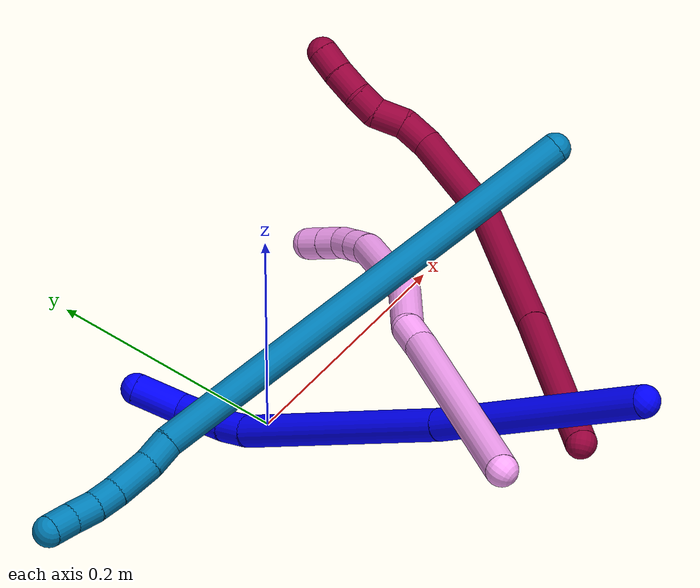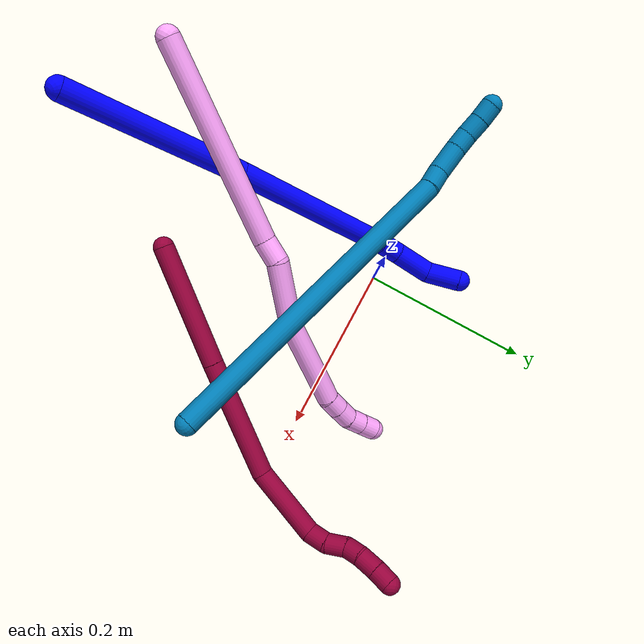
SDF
<sdf version="1.7">
 <world name="default">
  <model name="photoneo_s_sensor">
   <static>1</static>
   <pose>0 0 2 1.57079 1.57079 3.14159</pose>
   <link name="link">
    <inertial><mass>0.1</mass></inertial>
    <sensor name="sensor" type="depth">
     <update_rate>30</update_rate>
     <camera>
      <horizontal_fov>1.22</horizontal_fov>
      <image><width>1920</width><height>1200</height><format>B8G8R8</format></image>
      <clip><near>0.1</near><far>4</far></clip>
      <depth_camera><output>points</output></depth_camera>
     </camera>
     <plugin name="camera_plugin" filename="libgazebo_ros_depth_camera.so">
      <baseline>0.2</baseline>
      <alwaysOn>1</alwaysOn>
      <updateRate>0.0</updateRate>
      <cameraName>camera_ir</cameraName>
      <imageTopicName>/camera/color/image_raw</imageTopicName>
      <cameraInfoTopicName>/camera/color/camera_info</cameraInfoTopicName>
      <depthImageTopicName>/camera/depth/image_raw</depthImageTopicName>
      <depthImageCameraInfoTopicName>/camera/depth/camera_info</depthImageCameraInfoTopicName>
      <pointCloudTopicName>/camera/depth/points</pointCloudTopicName>
      <frameName>fr_optical</frameName>
      <pointCloudCutoff>0.1</pointCloudCutoff>
      <pointCloudCutoffMax>2.0</pointCloudCutoffMax>
      <distortionK1>0</distortionK1>
      <distortionK2>0</distortionK2>
      <distortionK3>0</distortionK3>
      <distortionT1>0</distortionT1>
      <distortionT2>0</distortionT2>
      <CxPrime>0</CxPrime>
      <Cx>0</Cx>
      <Cy>0</Cy>
      <focalLength>0</focalLength>
      <hackBaseline>0</hackBaseline>
     </plugin>
    </sensor>
   </link>
  </model>
  <model name="bin">
   <static>1</static>
   <link name="bottom">
    <collision name="collision-bottom">
     <pose>0 0 -0.01 0 -0 0</pose>
     <geometry><box><size>0.8 0.6 0.02</size></box></geometry>
     <surface>
      <friction><ode><mu>100</mu><mu2>100</mu2></ode></friction>
      <contact><collide_bitmask>65535</collide_bitmask></contact>
     </surface>
    </collision>
   </link>
   <link name="west_wall">
    <collision name="collision-west_wall">
     <pose>-0.41 0 0.1 0 -0 0</pose>
     <geometry><box><size>0.02 0.6 0.2</size></box></geometry>
     <surface>
      <friction><ode><mu>100</mu><mu2>100</mu2></ode></friction>
      <contact><collide_bitmask>65535</collide_bitmask></contact>
     </surface>
    </collision>
   </link>
   <link name="east_wall">
    <collision name="collision-east_wall">
     <pose>0.41 0 0.1 0 -0 0</pose>
     <geometry><box><size>0.02 0.6 0.2</size></box></geometry>
     <surface>
      <friction><ode><mu>100</mu><mu2>100</mu2></ode></friction>
      <contact><collide_bitmask>65535</collide_bitmask></contact>
     </surface>
    </collision>
   </link>
   <link name="south_wall">
    <collision name="collision-south_wall">
     <pose>0 -0.31 0.1 0 -0 0</pose>
     <geometry><box><size>0.8 0.02 0.2</size></box></geometry>
     <surface>
      <friction><ode><mu>100</mu><mu2>100</mu2></ode></friction>
      <contact><collide_bitmask>65535</collide_bitmask></contact>
     </surface>
    </collision>
   </link>
   <link name="north_wall">
    <collision name="collision-north_wall">
     <pose>0 0.31 0.1 0 -0 0</pose>
     <geometry><box><size>0.8 0.02 0.2</size></box></geometry>
     <surface>
      <friction><ode><mu>100</mu><mu2>100</mu2></ode></friction>
      <contact><collide_bitmask>65535</collide_bitmask></contact>
     </surface>
    </collision>
   </link>
  </model>
  <model name="1">
   <static>0</static>
   <link name="1">
    <collision name="collision-cylinder-e_1_1_4">
     <pose>0.007891 0.068695 -0.070158 -2.36673 0.080194 -0.196003</pose>
     <geometry><cylinder><radius>0.0125</radius><length>0.197012</length></cylinder></geometry>
     <surface>
      <friction><ode><mu>1.16</mu><mu2>1.16</mu2><slip1>0</slip1><slip2>0</slip2></ode></friction>
      <contact><ode><kp>1e+06</kp><kd>1</kd><max_vel>0</max_vel><min_depth>0.001</min_depth></ode></contact>
     </surface>
    </collision>
    <visual name="visual-cylinder-e_1_1_4">
     <pose>0.007891 0.068695 -0.070158 -2.36673 0.080194 -0.196003</pose>
     <geometry><cylinder><radius>0.0125</radius><length>0.197012</length></cylinder></geometry>
     <material><ambient>0 0 1 1</ambient></material>
    </visual>
    <collision name="collision-cylinder-e_2_4_5">
     <pose>0.022717 0.209499 -0.205709 -2.3074 0.071117 -0.160224</pose>
     <geometry><cylinder><radius>0.0125</radius><length>0.195182</length></cylinder></geometry>
     <surface>
      <friction><ode><mu>1.16</mu><mu2>1.16</mu2><slip1>0</slip1><slip2>0</slip2></ode></friction>
      <contact><ode><kp>1e+06</kp><kd>1</kd><max_vel>0</max_vel><min_depth>0.001</min_depth></ode></contact>
     </surface>
    </collision>
    <visual name="visual-cylinder-e_2_4_5">
     <pose>0.022717 0.209499 -0.205709 -2.3074 0.071117 -0.160224</pose>
     <geometry><cylinder><radius>0.0125</radius><length>0.195182</length></cylinder></geometry>
     <material><ambient>0 0 1 1</ambient></material>
    </visual>
    <collision name="collision-cylinder-e_3_5_6">
     <pose>0.029596 0.291521 -0.277165 -2.11966 -0.004747 0.008467</pose>
     <geometry><cylinder><radius>0.0125</radius><length>0.023241</length></cylinder></geometry>
     <surface>
      <friction><ode><mu>1.16</mu><mu2>1.16</mu2><slip1>0</slip1><slip2>0</slip2></ode></friction>
      <contact><ode><kp>1e+06</kp><kd>1</kd><max_vel>0</max_vel><min_depth>0.001</min_depth></ode></contact>
     </surface>
    </collision>
    <visual name="visual-cylinder-e_3_5_6">
     <pose>0.029596 0.291521 -0.277165 -2.11966 -0.004747 0.008467</pose>
     <geometry><cylinder><radius>0.0125</radius><length>0.023241</length></cylinder></geometry>
     <material><ambient>0 0 1 1</ambient></material>
    </visual>
    <collision name="collision-cylinder-e_4_6_7">
     <pose>0.02797 0.3215 -0.292742 -2.01355 -0.070645 0.11161</pose>
     <geometry><cylinder><radius>0.0125</radius><length>0.044524</length></cylinder></geometry>
     <surface>
      <friction><ode><mu>1.16</mu><mu2>1.16</mu2><slip1>0</slip1><slip2>0</slip2></ode></friction>
      <contact><ode><kp>1e+06</kp><kd>1</kd><max_vel>0</max_vel><min_depth>0.001</min_depth></ode></contact>
     </surface>
    </collision>
    <visual name="visual-cylinder-e_4_6_7">
     <pose>0.02797 0.3215 -0.292742 -2.01355 -0.070645 0.11161</pose>
     <geometry><cylinder><radius>0.0125</radius><length>0.044524</length></cylinder></geometry>
     <material><ambient>0 0 1 1</ambient></material>
    </visual>
    <collision name="collision-cylinder-e_5_7_2">
     <pose>0.016504 0.357515 -0.309222 -1.9826 -0.516934 0.767853</pose>
     <geometry><cylinder><radius>0.0125</radius><length>0.04004</length></cylinder></geometry>
     <surface>
      <friction><ode><mu>1.16</mu><mu2>1.16</mu2><slip1>0</slip1><slip2>0</slip2></ode></friction>
      <contact><ode><kp>1e+06</kp><kd>1</kd><max_vel>0</max_vel><min_depth>0.001</min_depth></ode></contact>
     </surface>
    </collision>
    <visual name="visual-cylinder-e_5_7_2">
     <pose>0.016504 0.357515 -0.309222 -1.9826 -0.516934 0.767853</pose>
     <geometry><cylinder><radius>0.0125</radius><length>0.04004</length></cylinder></geometry>
     <material><ambient>0 0 1 1</ambient></material>
    </visual>
    <collision name="collision-sphere-2">
     <pose>0.00661 0.373464 -0.316188 0 -0 0</pose>
     <geometry><sphere><radius>0.0125</radius></sphere></geometry>
     <surface>
      <friction><ode><mu>1.16</mu><mu2>1.16</mu2><slip1>0</slip1><slip2>0</slip2></ode></friction>
      <contact><ode><kp>1e+06</kp><kd>1</kd><max_vel>0</max_vel><min_depth>0.001</min_depth></ode></contact>
     </surface>
    </collision>
    <visual name="visual-sphere-2">
     <pose>0.00661 0.373464 -0.316188 0 -0 0</pose>
     <geometry><sphere><radius>0.0125</radius></sphere></geometry>
     <material><ambient>0 0 1 1</ambient></material>
    </visual>
    <collision name="collision-sphere-7">
     <pose>0.026398 0.341565 -0.302256 0 -0 0</pose>
     <geometry><sphere><radius>0.0125</radius></sphere></geometry>
     <surface>
      <friction><ode><mu>1.16</mu><mu2>1.16</mu2><slip1>0</slip1><slip2>0</slip2></ode></friction>
      <contact><ode><kp>1e+06</kp><kd>1</kd><max_vel>0</max_vel><min_depth>0.001</min_depth></ode></contact>
     </surface>
    </collision>
    <visual name="visual-sphere-7">
     <pose>0.026398 0.341565 -0.302256 0 -0 0</pose>
     <geometry><sphere><radius>0.0125</radius></sphere></geometry>
     <material><ambient>0 0 1 1</ambient></material>
    </visual>
    <collision name="collision-sphere-6">
     <pose>0.029541 0.301435 -0.283228 0 -0 0</pose>
     <geometry><sphere><radius>0.0125</radius></sphere></geometry>
     <surface>
      <friction><ode><mu>1.16</mu><mu2>1.16</mu2><slip1>0</slip1><slip2>0</slip2></ode></friction>
      <contact><ode><kp>1e+06</kp><kd>1</kd><max_vel>0</max_vel><min_depth>0.001</min_depth></ode></contact>
     </surface>
    </collision>
    <visual name="visual-sphere-6">
     <pose>0.029541 0.301435 -0.283228 0 -0 0</pose>
     <geometry><sphere><radius>0.0125</radius></sphere></geometry>
     <material><ambient>0 0 1 1</ambient></material>
    </visual>
    <collision name="collision-sphere-5">
     <pose>0.029651 0.281607 -0.271102 0 -0 0</pose>
     <geometry><sphere><radius>0.0125</radius></sphere></geometry>
     <surface>
      <friction><ode><mu>1.16</mu><mu2>1.16</mu2><slip1>0</slip1><slip2>0</slip2></ode></friction>
      <contact><ode><kp>1e+06</kp><kd>1</kd><max_vel>0</max_vel><min_depth>0.001</min_depth></ode></contact>
     </surface>
    </collision>
    <visual name="visual-sphere-5">
     <pose>0.029651 0.281607 -0.271102 0 -0 0</pose>
     <geometry><sphere><radius>0.0125</radius></sphere></geometry>
     <material><ambient>0 0 1 1</ambient></material>
    </visual>
    <collision name="collision-sphere-1">
     <geometry><sphere><radius>0.0125</radius></sphere></geometry>
     <surface>
      <friction><ode><mu>1.16</mu><mu2>1.16</mu2><slip1>0</slip1><slip2>0</slip2></ode></friction>
      <contact><ode><kp>1e+06</kp><kd>1</kd><max_vel>0</max_vel><min_depth>0.001</min_depth></ode></contact>
     </surface>
    </collision>
    <visual name="visual-sphere-1">
     <geometry><sphere><radius>0.0125</radius></sphere></geometry>
     <material><ambient>0 0 1 1</ambient></material>
    </visual>
    <collision name="collision-sphere-4">
     <pose>0.015782 0.137391 -0.140316 0 -0 0</pose>
     <geometry><sphere><radius>0.0125</radius></sphere></geometry>
     <surface>
      <friction><ode><mu>1.16</mu><mu2>1.16</mu2><slip1>0</slip1><slip2>0</slip2></ode></friction>
      <contact><ode><kp>1e+06</kp><kd>1</kd><max_vel>0</max_vel><min_depth>0.001</min_depth></ode></contact>
     </surface>
    </collision>
    <visual name="visual-sphere-4">
     <pose>0.015782 0.137391 -0.140316 0 -0 0</pose>
     <geometry><sphere><radius>0.0125</radius></sphere></geometry>
     <material><ambient>0 0 1 1</ambient></material>
    </visual>
    <inertial>
     <pose>0.017165 0.179658 -0.17166 0 -0 0</pose>
     <mass>0.5</mass>
     <inertia>
      <ixx>0.001044</ixx>
      <ixy>0</ixy>
      <ixz>0</ixz>
      <iyy>-0.001051</iyy>
      <iyz>0</iyz>
      <izz>-0.001045</izz>
     </inertia>
    </inertial>
   </link>
   <pose>0.011148 -0.338486 0.239513 -0.01331 0.822768 -0.431208</pose>
  </model>
  <model name="4">
   <static>0</static>
   <link name="4">
    <collision name="collision-cylinder-e_1_1_4">
     <pose>0.030384 0.073191 -0.074154 -2.36273 0.283754 -0.669872</pose>
     <geometry><cylinder><radius>0.0125</radius><length>0.217062</length></cylinder></geometry>
     <surface>
      <friction><ode><mu>1.16</mu><mu2>1.16</mu2><slip1>0</slip1><slip2>0</slip2></ode></friction>
      <contact><ode><kp>1e+06</kp><kd>1</kd><max_vel>0</max_vel><min_depth>0.001</min_depth></ode></contact>
     </surface>
    </collision>
    <visual name="visual-cylinder-e_1_1_4">
     <pose>0.030384 0.073191 -0.074154 -2.36273 0.283754 -0.669872</pose>
     <geometry><cylinder><radius>0.0125</radius><length>0.217062</length></cylinder></geometry>
     <material><ambient>1 0.65098 0.996078 1</ambient></material>
    </visual>
    <collision name="collision-cylinder-e_2_4_5">
     <pose>0.063017 0.153676 -0.158927 -2.53976 0.172778 -0.544283</pose>
     <geometry><cylinder><radius>0.0125</radius><length>0.026154</length></cylinder></geometry>
     <surface>
      <friction><ode><mu>1.16</mu><mu2>1.16</mu2><slip1>0</slip1><slip2>0</slip2></ode></friction>
      <contact><ode><kp>1e+06</kp><kd>1</kd><max_vel>0</max_vel><min_depth>0.001</min_depth></ode></contact>
     </surface>
    </collision>
    <visual name="visual-cylinder-e_2_4_5">
     <pose>0.063017 0.153676 -0.158927 -2.53976 0.172778 -0.544283</pose>
     <geometry><cylinder><radius>0.0125</radius><length>0.026154</length></cylinder></geometry>
     <material><ambient>1 0.65098 0.996078 1</ambient></material>
    </visual>
    <collision name="collision-cylinder-e_3_5_6">
     <pose>0.073191 0.19035 -0.187761 -2.12577 0.225368 -0.401143</pose>
     <geometry><cylinder><radius>0.0125</radius><length>0.070932</length></cylinder></geometry>
     <surface>
      <friction><ode><mu>1.16</mu><mu2>1.16</mu2><slip1>0</slip1><slip2>0</slip2></ode></friction>
      <contact><ode><kp>1e+06</kp><kd>1</kd><max_vel>0</max_vel><min_depth>0.001</min_depth></ode></contact>
     </surface>
    </collision>
    <visual name="visual-cylinder-e_3_5_6">
     <pose>0.073191 0.19035 -0.187761 -2.12577 0.225368 -0.401143</pose>
     <geometry><cylinder><radius>0.0125</radius><length>0.070932</length></cylinder></geometry>
     <material><ambient>1 0.65098 0.996078 1</ambient></material>
    </visual>
    <collision name="collision-cylinder-e_4_6_7">
     <pose>0.100746 0.255095 -0.239765 -2.33343 0.381658 -0.848636</pose>
     <geometry><cylinder><radius>0.0125</radius><length>0.105407</length></cylinder></geometry>
     <surface>
      <friction><ode><mu>1.16</mu><mu2>1.16</mu2><slip1>0</slip1><slip2>0</slip2></ode></friction>
      <contact><ode><kp>1e+06</kp><kd>1</kd><max_vel>0</max_vel><min_depth>0.001</min_depth></ode></contact>
     </surface>
    </collision>
    <visual name="visual-cylinder-e_4_6_7">
     <pose>0.100746 0.255095 -0.239765 -2.33343 0.381658 -0.848636</pose>
     <geometry><cylinder><radius>0.0125</radius><length>0.105407</length></cylinder></geometry>
     <material><ambient>1 0.65098 0.996078 1</ambient></material>
    </visual>
    <collision name="collision-cylinder-e_5_7_8">
     <pose>0.125925 0.295183 -0.280532 -2.54644 0.582325 -1.54769</pose>
     <geometry><cylinder><radius>0.0125</radius><length>0.020178</length></cylinder></geometry>
     <surface>
      <friction><ode><mu>1.16</mu><mu2>1.16</mu2><slip1>0</slip1><slip2>0</slip2></ode></friction>
      <contact><ode><kp>1e+06</kp><kd>1</kd><max_vel>0</max_vel><min_depth>0.001</min_depth></ode></contact>
     </surface>
    </collision>
    <visual name="visual-cylinder-e_5_7_8">
     <pose>0.125925 0.295183 -0.280532 -2.54644 0.582325 -1.54769</pose>
     <geometry><cylinder><radius>0.0125</radius><length>0.020178</length></cylinder></geometry>
     <material><ambient>1 0.65098 0.996078 1</ambient></material>
    </visual>
    <collision name="collision-cylinder-e_6_8_9">
     <pose>0.137171 0.304467 -0.294526 -2.56529 0.597769 -1.60954</pose>
     <geometry><cylinder><radius>0.0125</radius><length>0.020249</length></cylinder></geometry>
     <surface>
      <friction><ode><mu>1.16</mu><mu2>1.16</mu2><slip1>0</slip1><slip2>0</slip2></ode></friction>
      <contact><ode><kp>1e+06</kp><kd>1</kd><max_vel>0</max_vel><min_depth>0.001</min_depth></ode></contact>
     </surface>
    </collision>
    <visual name="visual-cylinder-e_6_8_9">
     <pose>0.137171 0.304467 -0.294526 -2.56529 0.597769 -1.60954</pose>
     <geometry><cylinder><radius>0.0125</radius><length>0.020249</length></cylinder></geometry>
     <material><ambient>1 0.65098 0.996078 1</ambient></material>
    </visual>
    <collision name="collision-cylinder-e_7_9_10">
     <pose>0.149505 0.31101 -0.308762 -2.87359 0.725277 -2.45881</pose>
     <geometry><cylinder><radius>0.0125</radius><length>0.020008</length></cylinder></geometry>
     <surface>
      <friction><ode><mu>1.16</mu><mu2>1.16</mu2><slip1>0</slip1><slip2>0</slip2></ode></friction>
      <contact><ode><kp>1e+06</kp><kd>1</kd><max_vel>0</max_vel><min_depth>0.001</min_depth></ode></contact>
     </surface>
    </collision>
    <visual name="visual-cylinder-e_7_9_10">
     <pose>0.149505 0.31101 -0.308762 -2.87359 0.725277 -2.45881</pose>
     <geometry><cylinder><radius>0.0125</radius><length>0.020008</length></cylinder></geometry>
     <material><ambient>1 0.65098 0.996078 1</ambient></material>
    </visual>
    <collision name="collision-cylinder-e_8_10_2">
     <pose>0.162759 0.314811 -0.323262 -2.89674 0.722702 -2.51213</pose>
     <geometry><cylinder><radius>0.0125</radius><length>0.02001</length></cylinder></geometry>
     <surface>
      <friction><ode><mu>1.16</mu><mu2>1.16</mu2><slip1>0</slip1><slip2>0</slip2></ode></friction>
      <contact><ode><kp>1e+06</kp><kd>1</kd><max_vel>0</max_vel><min_depth>0.001</min_depth></ode></contact>
     </surface>
    </collision>
    <visual name="visual-cylinder-e_8_10_2">
     <pose>0.162759 0.314811 -0.323262 -2.89674 0.722702 -2.51213</pose>
     <geometry><cylinder><radius>0.0125</radius><length>0.02001</length></cylinder></geometry>
     <material><ambient>1 0.65098 0.996078 1</ambient></material>
    </visual>
    <collision name="collision-sphere-2">
     <pose>0.169377 0.31663 -0.330542 0 -0 0</pose>
     <geometry><sphere><radius>0.0125</radius></sphere></geometry>
     <surface>
      <friction><ode><mu>1.16</mu><mu2>1.16</mu2><slip1>0</slip1><slip2>0</slip2></ode></friction>
      <contact><ode><kp>1e+06</kp><kd>1</kd><max_vel>0</max_vel><min_depth>0.001</min_depth></ode></contact>
     </surface>
    </collision>
    <visual name="visual-sphere-2">
     <pose>0.169377 0.31663 -0.330542 0 -0 0</pose>
     <geometry><sphere><radius>0.0125</radius></sphere></geometry>
     <material><ambient>1 0.65098 0.996078 1</ambient></material>
    </visual>
    <collision name="collision-sphere-10">
     <pose>0.156142 0.312992 -0.315981 0 -0 0</pose>
     <geometry><sphere><radius>0.0125</radius></sphere></geometry>
     <surface>
      <friction><ode><mu>1.16</mu><mu2>1.16</mu2><slip1>0</slip1><slip2>0</slip2></ode></friction>
      <contact><ode><kp>1e+06</kp><kd>1</kd><max_vel>0</max_vel><min_depth>0.001</min_depth></ode></contact>
     </surface>
    </collision>
    <visual name="visual-sphere-10">
     <pose>0.156142 0.312992 -0.315981 0 -0 0</pose>
     <geometry><sphere><radius>0.0125</radius></sphere></geometry>
     <material><ambient>1 0.65098 0.996078 1</ambient></material>
    </visual>
    <collision name="collision-sphere-9">
     <pose>0.142869 0.309027 -0.301543 0 -0 0</pose>
     <geometry><sphere><radius>0.0125</radius></sphere></geometry>
     <surface>
      <friction><ode><mu>1.16</mu><mu2>1.16</mu2><slip1>0</slip1><slip2>0</slip2></ode></friction>
      <contact><ode><kp>1e+06</kp><kd>1</kd><max_vel>0</max_vel><min_depth>0.001</min_depth></ode></contact>
     </surface>
    </collision>
    <visual name="visual-sphere-9">
     <pose>0.142869 0.309027 -0.301543 0 -0 0</pose>
     <geometry><sphere><radius>0.0125</radius></sphere></geometry>
     <material><ambient>1 0.65098 0.996078 1</ambient></material>
    </visual>
    <collision name="collision-sphere-4">
     <pose>0.060769 0.146382 -0.148308 0 -0 0</pose>
     <geometry><sphere><radius>0.0125</radius></sphere></geometry>
     <surface>
      <friction><ode><mu>1.16</mu><mu2>1.16</mu2><slip1>0</slip1><slip2>0</slip2></ode></friction>
      <contact><ode><kp>1e+06</kp><kd>1</kd><max_vel>0</max_vel><min_depth>0.001</min_depth></ode></contact>
     </surface>
    </collision>
    <visual name="visual-sphere-4">
     <pose>0.060769 0.146382 -0.148308 0 -0 0</pose>
     <geometry><sphere><radius>0.0125</radius></sphere></geometry>
     <material><ambient>1 0.65098 0.996078 1</ambient></material>
    </visual>
    <collision name="collision-sphere-1">
     <geometry><sphere><radius>0.0125</radius></sphere></geometry>
     <surface>
      <friction><ode><mu>1.16</mu><mu2>1.16</mu2><slip1>0</slip1><slip2>0</slip2></ode></friction>
      <contact><ode><kp>1e+06</kp><kd>1</kd><max_vel>0</max_vel><min_depth>0.001</min_depth></ode></contact>
     </surface>
    </collision>
    <visual name="visual-sphere-1">
     <geometry><sphere><radius>0.0125</radius></sphere></geometry>
     <material><ambient>1 0.65098 0.996078 1</ambient></material>
    </visual>
    <collision name="collision-sphere-8">
     <pose>0.131473 0.299907 -0.287509 0 -0 0</pose>
     <geometry><sphere><radius>0.0125</radius></sphere></geometry>
     <surface>
      <friction><ode><mu>1.16</mu><mu2>1.16</mu2><slip1>0</slip1><slip2>0</slip2></ode></friction>
      <contact><ode><kp>1e+06</kp><kd>1</kd><max_vel>0</max_vel><min_depth>0.001</min_depth></ode></contact>
     </surface>
    </collision>
    <visual name="visual-sphere-8">
     <pose>0.131473 0.299907 -0.287509 0 -0 0</pose>
     <geometry><sphere><radius>0.0125</radius></sphere></geometry>
     <material><ambient>1 0.65098 0.996078 1</ambient></material>
    </visual>
    <collision name="collision-sphere-5">
     <pose>0.065265 0.160969 -0.169546 0 -0 0</pose>
     <geometry><sphere><radius>0.0125</radius></sphere></geometry>
     <surface>
      <friction><ode><mu>1.16</mu><mu2>1.16</mu2><slip1>0</slip1><slip2>0</slip2></ode></friction>
      <contact><ode><kp>1e+06</kp><kd>1</kd><max_vel>0</max_vel><min_depth>0.001</min_depth></ode></contact>
     </surface>
    </collision>
    <visual name="visual-sphere-5">
     <pose>0.065265 0.160969 -0.169546 0 -0 0</pose>
     <geometry><sphere><radius>0.0125</radius></sphere></geometry>
     <material><ambient>1 0.65098 0.996078 1</ambient></material>
    </visual>
    <collision name="collision-sphere-6">
     <pose>0.081116 0.219731 -0.205976 0 -0 0</pose>
     <geometry><sphere><radius>0.0125</radius></sphere></geometry>
     <surface>
      <friction><ode><mu>1.16</mu><mu2>1.16</mu2><slip1>0</slip1><slip2>0</slip2></ode></friction>
      <contact><ode><kp>1e+06</kp><kd>1</kd><max_vel>0</max_vel><min_depth>0.001</min_depth></ode></contact>
     </surface>
    </collision>
    <visual name="visual-sphere-6">
     <pose>0.081116 0.219731 -0.205976 0 -0 0</pose>
     <geometry><sphere><radius>0.0125</radius></sphere></geometry>
     <material><ambient>1 0.65098 0.996078 1</ambient></material>
    </visual>
    <collision name="collision-sphere-7">
     <pose>0.120376 0.290459 -0.273555 0 -0 0</pose>
     <geometry><sphere><radius>0.0125</radius></sphere></geometry>
     <surface>
      <friction><ode><mu>1.16</mu><mu2>1.16</mu2><slip1>0</slip1><slip2>0</slip2></ode></friction>
      <contact><ode><kp>1e+06</kp><kd>1</kd><max_vel>0</max_vel><min_depth>0.001</min_depth></ode></contact>
     </surface>
    </collision>
    <visual name="visual-sphere-7">
     <pose>0.120376 0.290459 -0.273555 0 -0 0</pose>
     <geometry><sphere><radius>0.0125</radius></sphere></geometry>
     <material><ambient>1 0.65098 0.996078 1</ambient></material>
    </visual>
    <inertial>
     <pose>0.071242 0.169881 -0.166229 0 -0 0</pose>
     <mass>0.5</mass>
     <inertia>
      <ixx>0.000152</ixx>
      <ixy>0</ixy>
      <ixz>0</ixz>
      <iyy>-0.000989</iyy>
      <iyz>0</iyz>
      <izz>-0.000995</izz>
     </inertia>
    </inertial>
   </link>
   <pose>-0.085486 -0.282682 0.213132 -2.0783 1.16881 2.63927</pose>
  </model>
  <model name="8">
   <static>0</static>
   <link name="8">
    <collision name="collision-cylinder-e_1_1_4">
     <pose>0.003896 0.05123 0.052887 -0.769485 0.052857 -0.021407</pose>
     <geometry><cylinder><radius>0.0125</radius><length>0.147467</length></cylinder></geometry>
     <surface>
      <friction><ode><mu>1.16</mu><mu2>1.16</mu2><slip1>0</slip1><slip2>0</slip2></ode></friction>
      <contact><ode><kp>1e+06</kp><kd>1</kd><max_vel>0</max_vel><min_depth>0.001</min_depth></ode></contact>
     </surface>
    </collision>
    <visual name="visual-cylinder-e_1_1_4">
     <pose>0.003896 0.05123 0.052887 -0.769485 0.052857 -0.021407</pose>
     <geometry><cylinder><radius>0.0125</radius><length>0.147467</length></cylinder></geometry>
     <material><ambient>0.584314 0 0.227451 1</ambient></material>
    </visual>
    <collision name="collision-cylinder-e_2_4_5">
     <pose>0.010825 0.154002 0.15715 -0.787012 0.041669 -0.017301</pose>
     <geometry><cylinder><radius>0.0125</radius><length>0.145676</length></cylinder></geometry>
     <surface>
      <friction><ode><mu>1.16</mu><mu2>1.16</mu2><slip1>0</slip1><slip2>0</slip2></ode></friction>
      <contact><ode><kp>1e+06</kp><kd>1</kd><max_vel>0</max_vel><min_depth>0.001</min_depth></ode></contact>
     </surface>
    </collision>
    <visual name="visual-cylinder-e_2_4_5">
     <pose>0.010825 0.154002 0.15715 -0.787012 0.041669 -0.017301</pose>
     <geometry><cylinder><radius>0.0125</radius><length>0.145676</length></cylinder></geometry>
     <material><ambient>0.584314 0 0.227451 1</ambient></material>
    </visual>
    <collision name="collision-cylinder-e_3_5_6">
     <pose>0.00161 0.237771 0.238043 -0.829271 -0.273279 0.120891</pose>
     <geometry><cylinder><radius>0.0125</radius><length>0.090771</length></cylinder></geometry>
     <surface>
      <friction><ode><mu>1.16</mu><mu2>1.16</mu2><slip1>0</slip1><slip2>0</slip2></ode></friction>
      <contact><ode><kp>1e+06</kp><kd>1</kd><max_vel>0</max_vel><min_depth>0.001</min_depth></ode></contact>
     </surface>
    </collision>
    <visual name="visual-cylinder-e_3_5_6">
     <pose>0.00161 0.237771 0.238043 -0.829271 -0.273279 0.120891</pose>
     <geometry><cylinder><radius>0.0125</radius><length>0.090771</length></cylinder></geometry>
     <material><ambient>0.584314 0 0.227451 1</ambient></material>
    </visual>
    <collision name="collision-cylinder-e_4_6_7">
     <pose>-0.019303 0.275822 0.274078 -0.72914 -0.780936 0.311613</pose>
     <geometry><cylinder><radius>0.0125</radius><length>0.024616</length></cylinder></geometry>
     <surface>
      <friction><ode><mu>1.16</mu><mu2>1.16</mu2><slip1>0</slip1><slip2>0</slip2></ode></friction>
      <contact><ode><kp>1e+06</kp><kd>1</kd><max_vel>0</max_vel><min_depth>0.001</min_depth></ode></contact>
     </surface>
    </collision>
    <visual name="visual-cylinder-e_4_6_7">
     <pose>-0.019303 0.275822 0.274078 -0.72914 -0.780936 0.311613</pose>
     <geometry><cylinder><radius>0.0125</radius><length>0.024616</length></cylinder></geometry>
     <material><ambient>0.584314 0 0.227451 1</ambient></material>
    </visual>
    <collision name="collision-cylinder-e_5_7_8">
     <pose>-0.03837 0.288469 0.282836 -1.25383 -0.966661 0.726646</pose>
     <geometry><cylinder><radius>0.0125</radius><length>0.025282</length></cylinder></geometry>
     <surface>
      <friction><ode><mu>1.16</mu><mu2>1.16</mu2><slip1>0</slip1><slip2>0</slip2></ode></friction>
      <contact><ode><kp>1e+06</kp><kd>1</kd><max_vel>0</max_vel><min_depth>0.001</min_depth></ode></contact>
     </surface>
    </collision>
    <visual name="visual-cylinder-e_5_7_8">
     <pose>-0.03837 0.288469 0.282836 -1.25383 -0.966661 0.726646</pose>
     <geometry><cylinder><radius>0.0125</radius><length>0.025282</length></cylinder></geometry>
     <material><ambient>0.584314 0 0.227451 1</ambient></material>
    </visual>
    <collision name="collision-cylinder-e_6_8_9">
     <pose>-0.056616 0.29881 0.29067 -0.561055 -0.870421 0.266338</pose>
     <geometry><cylinder><radius>0.0125</radius><length>0.020512</length></cylinder></geometry>
     <surface>
      <friction><ode><mu>1.16</mu><mu2>1.16</mu2><slip1>0</slip1><slip2>0</slip2></ode></friction>
      <contact><ode><kp>1e+06</kp><kd>1</kd><max_vel>0</max_vel><min_depth>0.001</min_depth></ode></contact>
     </surface>
    </collision>
    <visual name="visual-cylinder-e_6_8_9">
     <pose>-0.056616 0.29881 0.29067 -0.561055 -0.870421 0.266338</pose>
     <geometry><cylinder><radius>0.0125</radius><length>0.020512</length></cylinder></geometry>
     <material><ambient>0.584314 0 0.227451 1</ambient></material>
    </visual>
    <collision name="collision-cylinder-e_7_9_10">
     <pose>-0.071685 0.307991 0.303852 -0.641493 -0.65205 0.223701</pose>
     <geometry><cylinder><radius>0.0125</radius><length>0.023821</length></cylinder></geometry>
     <surface>
      <friction><ode><mu>1.16</mu><mu2>1.16</mu2><slip1>0</slip1><slip2>0</slip2></ode></friction>
      <contact><ode><kp>1e+06</kp><kd>1</kd><max_vel>0</max_vel><min_depth>0.001</min_depth></ode></contact>
     </surface>
    </collision>
    <visual name="visual-cylinder-e_7_9_10">
     <pose>-0.071685 0.307991 0.303852 -0.641493 -0.65205 0.223701</pose>
     <geometry><cylinder><radius>0.0125</radius><length>0.023821</length></cylinder></geometry>
     <material><ambient>0.584314 0 0.227451 1</ambient></material>
    </visual>
    <collision name="collision-cylinder-e_8_10_2">
     <pose>-0.084809 0.318836 0.31904 -0.598094 -0.57005 0.180172</pose>
     <geometry><cylinder><radius>0.0125</radius><length>0.021855</length></cylinder></geometry>
     <surface>
      <friction><ode><mu>1.16</mu><mu2>1.16</mu2><slip1>0</slip1><slip2>0</slip2></ode></friction>
      <contact><ode><kp>1e+06</kp><kd>1</kd><max_vel>0</max_vel><min_depth>0.001</min_depth></ode></contact>
     </surface>
    </collision>
    <visual name="visual-cylinder-e_8_10_2">
     <pose>-0.084809 0.318836 0.31904 -0.598094 -0.57005 0.180172</pose>
     <geometry><cylinder><radius>0.0125</radius><length>0.021855</length></cylinder></geometry>
     <material><ambient>0.584314 0 0.227451 1</ambient></material>
    </visual>
    <collision name="collision-sphere-2">
     <pose>-0.090707 0.324016 0.326642 0 -0 0</pose>
     <geometry><sphere><radius>0.0125</radius></sphere></geometry>
     <surface>
      <friction><ode><mu>1.16</mu><mu2>1.16</mu2><slip1>0</slip1><slip2>0</slip2></ode></friction>
      <contact><ode><kp>1e+06</kp><kd>1</kd><max_vel>0</max_vel><min_depth>0.001</min_depth></ode></contact>
     </surface>
    </collision>
    <visual name="visual-sphere-2">
     <pose>-0.090707 0.324016 0.326642 0 -0 0</pose>
     <geometry><sphere><radius>0.0125</radius></sphere></geometry>
     <material><ambient>0.584314 0 0.227451 1</ambient></material>
    </visual>
    <collision name="collision-sphere-10">
     <pose>-0.078912 0.313656 0.311437 0 -0 0</pose>
     <geometry><sphere><radius>0.0125</radius></sphere></geometry>
     <surface>
      <friction><ode><mu>1.16</mu><mu2>1.16</mu2><slip1>0</slip1><slip2>0</slip2></ode></friction>
      <contact><ode><kp>1e+06</kp><kd>1</kd><max_vel>0</max_vel><min_depth>0.001</min_depth></ode></contact>
     </surface>
    </collision>
    <visual name="visual-sphere-10">
     <pose>-0.078912 0.313656 0.311437 0 -0 0</pose>
     <geometry><sphere><radius>0.0125</radius></sphere></geometry>
     <material><ambient>0.584314 0 0.227451 1</ambient></material>
    </visual>
    <collision name="collision-sphere-9">
     <pose>-0.064457 0.302327 0.296267 0 -0 0</pose>
     <geometry><sphere><radius>0.0125</radius></sphere></geometry>
     <surface>
      <friction><ode><mu>1.16</mu><mu2>1.16</mu2><slip1>0</slip1><slip2>0</slip2></ode></friction>
      <contact><ode><kp>1e+06</kp><kd>1</kd><max_vel>0</max_vel><min_depth>0.001</min_depth></ode></contact>
     </surface>
    </collision>
    <visual name="visual-sphere-9">
     <pose>-0.064457 0.302327 0.296267 0 -0 0</pose>
     <geometry><sphere><radius>0.0125</radius></sphere></geometry>
     <material><ambient>0.584314 0 0.227451 1</ambient></material>
    </visual>
    <collision name="collision-sphere-4">
     <pose>0.007791 0.102459 0.105773 0 -0 0</pose>
     <geometry><sphere><radius>0.0125</radius></sphere></geometry>
     <surface>
      <friction><ode><mu>1.16</mu><mu2>1.16</mu2><slip1>0</slip1><slip2>0</slip2></ode></friction>
      <contact><ode><kp>1e+06</kp><kd>1</kd><max_vel>0</max_vel><min_depth>0.001</min_depth></ode></contact>
     </surface>
    </collision>
    <visual name="visual-sphere-4">
     <pose>0.007791 0.102459 0.105773 0 -0 0</pose>
     <geometry><sphere><radius>0.0125</radius></sphere></geometry>
     <material><ambient>0.584314 0 0.227451 1</ambient></material>
    </visual>
    <collision name="collision-sphere-1">
     <geometry><sphere><radius>0.0125</radius></sphere></geometry>
     <surface>
      <friction><ode><mu>1.16</mu><mu2>1.16</mu2><slip1>0</slip1><slip2>0</slip2></ode></friction>
      <contact><ode><kp>1e+06</kp><kd>1</kd><max_vel>0</max_vel><min_depth>0.001</min_depth></ode></contact>
     </surface>
    </collision>
    <visual name="visual-sphere-1">
     <geometry><sphere><radius>0.0125</radius></sphere></geometry>
     <material><ambient>0.584314 0 0.227451 1</ambient></material>
    </visual>
    <collision name="collision-sphere-8">
     <pose>-0.048774 0.295292 0.285074 0 -0 0</pose>
     <geometry><sphere><radius>0.0125</radius></sphere></geometry>
     <surface>
      <friction><ode><mu>1.16</mu><mu2>1.16</mu2><slip1>0</slip1><slip2>0</slip2></ode></friction>
      <contact><ode><kp>1e+06</kp><kd>1</kd><max_vel>0</max_vel><min_depth>0.001</min_depth></ode></contact>
     </surface>
    </collision>
    <visual name="visual-sphere-8">
     <pose>-0.048774 0.295292 0.285074 0 -0 0</pose>
     <geometry><sphere><radius>0.0125</radius></sphere></geometry>
     <material><ambient>0.584314 0 0.227451 1</ambient></material>
    </visual>
    <collision name="collision-sphere-5">
     <pose>0.013859 0.205544 0.208526 0 -0 0</pose>
     <geometry><sphere><radius>0.0125</radius></sphere></geometry>
     <surface>
      <friction><ode><mu>1.16</mu><mu2>1.16</mu2><slip1>0</slip1><slip2>0</slip2></ode></friction>
      <contact><ode><kp>1e+06</kp><kd>1</kd><max_vel>0</max_vel><min_depth>0.001</min_depth></ode></contact>
     </surface>
    </collision>
    <visual name="visual-sphere-5">
     <pose>0.013859 0.205544 0.208526 0 -0 0</pose>
     <geometry><sphere><radius>0.0125</radius></sphere></geometry>
     <material><ambient>0.584314 0 0.227451 1</ambient></material>
    </visual>
    <collision name="collision-sphere-6">
     <pose>-0.010639 0.269998 0.267559 0 -0 0</pose>
     <geometry><sphere><radius>0.0125</radius></sphere></geometry>
     <surface>
      <friction><ode><mu>1.16</mu><mu2>1.16</mu2><slip1>0</slip1><slip2>0</slip2></ode></friction>
      <contact><ode><kp>1e+06</kp><kd>1</kd><max_vel>0</max_vel><min_depth>0.001</min_depth></ode></contact>
     </surface>
    </collision>
    <visual name="visual-sphere-6">
     <pose>-0.010639 0.269998 0.267559 0 -0 0</pose>
     <geometry><sphere><radius>0.0125</radius></sphere></geometry>
     <material><ambient>0.584314 0 0.227451 1</ambient></material>
    </visual>
    <collision name="collision-sphere-7">
     <pose>-0.027967 0.281647 0.280597 0 -0 0</pose>
     <geometry><sphere><radius>0.0125</radius></sphere></geometry>
     <surface>
      <friction><ode><mu>1.16</mu><mu2>1.16</mu2><slip1>0</slip1><slip2>0</slip2></ode></friction>
      <contact><ode><kp>1e+06</kp><kd>1</kd><max_vel>0</max_vel><min_depth>0.001</min_depth></ode></contact>
     </surface>
    </collision>
    <visual name="visual-sphere-7">
     <pose>-0.027967 0.281647 0.280597 0 -0 0</pose>
     <geometry><sphere><radius>0.0125</radius></sphere></geometry>
     <material><ambient>0.584314 0 0.227451 1</ambient></material>
    </visual>
    <inertial>
     <pose>-0.00774 0.172177 0.172739 0 -0 0</pose>
     <mass>0.5</mass>
     <inertia>
      <ixx>0.000597</ixx>
      <ixy>0</ixy>
      <ixz>0</ixz>
      <iyy>0.000461</iyy>
      <iyz>0</iyz>
      <izz>-0.000403</izz>
     </inertia>
    </inertial>
   </link>
   <pose>0.09024 -0.231109 0.053982 -0.93363 0.614143 -0.726379</pose>
  </model>
  <model name="9">
   <static>0</static>
   <link name="9">
    <collision name="collision-cylinder-e_1_1_4">
     <pose>-0.13595 0.118257 -0.055924 -2.01253 -0.80465 1.18331</pose>
     <geometry><cylinder><radius>0.0125</radius><length>0.377331</length></cylinder></geometry>
     <surface>
      <friction><ode><mu>1.16</mu><mu2>1.16</mu2><slip1>0</slip1><slip2>0</slip2></ode></friction>
      <contact><ode><kp>1e+06</kp><kd>1</kd><max_vel>0</max_vel><min_depth>0.001</min_depth></ode></contact>
     </surface>
    </collision>
    <visual name="visual-cylinder-e_1_1_4">
     <pose>-0.13595 0.118257 -0.055924 -2.01253 -0.80465 1.18331</pose>
     <geometry><cylinder><radius>0.0125</radius><length>0.377331</length></cylinder></geometry>
     <material><ambient>0 0.490196 0.709804 1</ambient></material>
    </visual>
    <collision name="collision-cylinder-e_2_4_5">
     <pose>-0.281714 0.241794 -0.11458 -2.0483 -1.02621 1.49394</pose>
     <geometry><cylinder><radius>0.0125</radius><length>0.022948</length></cylinder></geometry>
     <surface>
      <friction><ode><mu>1.16</mu><mu2>1.16</mu2><slip1>0</slip1><slip2>0</slip2></ode></friction>
      <contact><ode><kp>1e+06</kp><kd>1</kd><max_vel>0</max_vel><min_depth>0.001</min_depth></ode></contact>
     </surface>
    </collision>
    <visual name="visual-cylinder-e_2_4_5">
     <pose>-0.281714 0.241794 -0.11458 -2.0483 -1.02621 1.49394</pose>
     <geometry><cylinder><radius>0.0125</radius><length>0.022948</length></cylinder></geometry>
     <material><ambient>0 0.490196 0.709804 1</ambient></material>
    </visual>
    <collision name="collision-cylinder-e_3_5_6">
     <pose>-0.3056 0.25741 -0.119387 -1.76893 -0.927786 1.09656</pose>
     <geometry><cylinder><radius>0.0125</radius><length>0.035166</length></cylinder></geometry>
     <surface>
      <friction><ode><mu>1.16</mu><mu2>1.16</mu2><slip1>0</slip1><slip2>0</slip2></ode></friction>
      <contact><ode><kp>1e+06</kp><kd>1</kd><max_vel>0</max_vel><min_depth>0.001</min_depth></ode></contact>
     </surface>
    </collision>
    <visual name="visual-cylinder-e_3_5_6">
     <pose>-0.3056 0.25741 -0.119387 -1.76893 -0.927786 1.09656</pose>
     <geometry><cylinder><radius>0.0125</radius><length>0.035166</length></cylinder></geometry>
     <material><ambient>0 0.490196 0.709804 1</ambient></material>
    </visual>
    <collision name="collision-cylinder-e_4_6_7">
     <pose>-0.3276 0.274421 -0.122072 -1.66195 -0.869037 0.940783</pose>
     <geometry><cylinder><radius>0.0125</radius><length>0.020764</length></cylinder></geometry>
     <surface>
      <friction><ode><mu>1.16</mu><mu2>1.16</mu2><slip1>0</slip1><slip2>0</slip2></ode></friction>
      <contact><ode><kp>1e+06</kp><kd>1</kd><max_vel>0</max_vel><min_depth>0.001</min_depth></ode></contact>
     </surface>
    </collision>
    <visual name="visual-cylinder-e_4_6_7">
     <pose>-0.3276 0.274421 -0.122072 -1.66195 -0.869037 0.940783</pose>
     <geometry><cylinder><radius>0.0125</radius><length>0.020764</length></cylinder></geometry>
     <material><ambient>0 0.490196 0.709804 1</ambient></material>
    </visual>
    <collision name="collision-cylinder-e_5_7_8">
     <pose>-0.343352 0.289212 -0.122255 -1.5182 -0.766267 0.730466</pose>
     <geometry><cylinder><radius>0.0125</radius><length>0.022564</length></cylinder></geometry>
     <surface>
      <friction><ode><mu>1.16</mu><mu2>1.16</mu2><slip1>0</slip1><slip2>0</slip2></ode></friction>
      <contact><ode><kp>1e+06</kp><kd>1</kd><max_vel>0</max_vel><min_depth>0.001</min_depth></ode></contact>
     </surface>
    </collision>
    <visual name="visual-cylinder-e_5_7_8">
     <pose>-0.343352 0.289212 -0.122255 -1.5182 -0.766267 0.730466</pose>
     <geometry><cylinder><radius>0.0125</radius><length>0.022564</length></cylinder></geometry>
     <material><ambient>0 0.490196 0.709804 1</ambient></material>
    </visual>
    <collision name="collision-cylinder-e_6_8_2">
     <pose>-0.358864 0.304559 -0.120699 -1.41601 -0.810157 0.703608</pose>
     <geometry><cylinder><radius>0.0125</radius><length>0.021227</length></cylinder></geometry>
     <surface>
      <friction><ode><mu>1.16</mu><mu2>1.16</mu2><slip1>0</slip1><slip2>0</slip2></ode></friction>
      <contact><ode><kp>1e+06</kp><kd>1</kd><max_vel>0</max_vel><min_depth>0.001</min_depth></ode></contact>
     </surface>
    </collision>
    <visual name="visual-cylinder-e_6_8_2">
     <pose>-0.358864 0.304559 -0.120699 -1.41601 -0.810157 0.703608</pose>
     <geometry><cylinder><radius>0.0125</radius><length>0.021227</length></cylinder></geometry>
     <material><ambient>0 0.490196 0.709804 1</ambient></material>
    </visual>
    <collision name="collision-sphere-2">
     <pose>-0.366553 0.311789 -0.119571 0 -0 0</pose>
     <geometry><sphere><radius>0.0125</radius></sphere></geometry>
     <surface>
      <friction><ode><mu>1.16</mu><mu2>1.16</mu2><slip1>0</slip1><slip2>0</slip2></ode></friction>
      <contact><ode><kp>1e+06</kp><kd>1</kd><max_vel>0</max_vel><min_depth>0.001</min_depth></ode></contact>
     </surface>
    </collision>
    <visual name="visual-sphere-2">
     <pose>-0.366553 0.311789 -0.119571 0 -0 0</pose>
     <geometry><sphere><radius>0.0125</radius></sphere></geometry>
     <material><ambient>0 0.490196 0.709804 1</ambient></material>
    </visual>
    <collision name="collision-sphere-4">
     <pose>-0.2719 0.236514 -0.111848 0 -0 0</pose>
     <geometry><sphere><radius>0.0125</radius></sphere></geometry>
     <surface>
      <friction><ode><mu>1.16</mu><mu2>1.16</mu2><slip1>0</slip1><slip2>0</slip2></ode></friction>
      <contact><ode><kp>1e+06</kp><kd>1</kd><max_vel>0</max_vel><min_depth>0.001</min_depth></ode></contact>
     </surface>
    </collision>
    <visual name="visual-sphere-4">
     <pose>-0.2719 0.236514 -0.111848 0 -0 0</pose>
     <geometry><sphere><radius>0.0125</radius></sphere></geometry>
     <material><ambient>0 0.490196 0.709804 1</ambient></material>
    </visual>
    <collision name="collision-sphere-1">
     <geometry><sphere><radius>0.0125</radius></sphere></geometry>
     <surface>
      <friction><ode><mu>1.16</mu><mu2>1.16</mu2><slip1>0</slip1><slip2>0</slip2></ode></friction>
      <contact><ode><kp>1e+06</kp><kd>1</kd><max_vel>0</max_vel><min_depth>0.001</min_depth></ode></contact>
     </surface>
    </collision>
    <visual name="visual-sphere-1">
     <geometry><sphere><radius>0.0125</radius></sphere></geometry>
     <material><ambient>0 0.490196 0.709804 1</ambient></material>
    </visual>
    <collision name="collision-sphere-8">
     <pose>-0.351176 0.29733 -0.121828 0 -0 0</pose>
     <geometry><sphere><radius>0.0125</radius></sphere></geometry>
     <surface>
      <friction><ode><mu>1.16</mu><mu2>1.16</mu2><slip1>0</slip1><slip2>0</slip2></ode></friction>
      <contact><ode><kp>1e+06</kp><kd>1</kd><max_vel>0</max_vel><min_depth>0.001</min_depth></ode></contact>
     </surface>
    </collision>
    <visual name="visual-sphere-8">
     <pose>-0.351176 0.29733 -0.121828 0 -0 0</pose>
     <geometry><sphere><radius>0.0125</radius></sphere></geometry>
     <material><ambient>0 0.490196 0.709804 1</ambient></material>
    </visual>
    <collision name="collision-sphere-5">
     <pose>-0.291528 0.247073 -0.117312 0 -0 0</pose>
     <geometry><sphere><radius>0.0125</radius></sphere></geometry>
     <surface>
      <friction><ode><mu>1.16</mu><mu2>1.16</mu2><slip1>0</slip1><slip2>0</slip2></ode></friction>
      <contact><ode><kp>1e+06</kp><kd>1</kd><max_vel>0</max_vel><min_depth>0.001</min_depth></ode></contact>
     </surface>
    </collision>
    <visual name="visual-sphere-5">
     <pose>-0.291528 0.247073 -0.117312 0 -0 0</pose>
     <geometry><sphere><radius>0.0125</radius></sphere></geometry>
     <material><ambient>0 0.490196 0.709804 1</ambient></material>
    </visual>
    <collision name="collision-sphere-6">
     <pose>-0.319671 0.267746 -0.121462 0 -0 0</pose>
     <geometry><sphere><radius>0.0125</radius></sphere></geometry>
     <surface>
      <friction><ode><mu>1.16</mu><mu2>1.16</mu2><slip1>0</slip1><slip2>0</slip2></ode></friction>
      <contact><ode><kp>1e+06</kp><kd>1</kd><max_vel>0</max_vel><min_depth>0.001</min_depth></ode></contact>
     </surface>
    </collision>
    <visual name="visual-sphere-6">
     <pose>-0.319671 0.267746 -0.121462 0 -0 0</pose>
     <geometry><sphere><radius>0.0125</radius></sphere></geometry>
     <material><ambient>0 0.490196 0.709804 1</ambient></material>
    </visual>
    <collision name="collision-sphere-7">
     <pose>-0.335529 0.281095 -0.122682 0 -0 0</pose>
     <geometry><sphere><radius>0.0125</radius></sphere></geometry>
     <surface>
      <friction><ode><mu>1.16</mu><mu2>1.16</mu2><slip1>0</slip1><slip2>0</slip2></ode></friction>
      <contact><ode><kp>1e+06</kp><kd>1</kd><max_vel>0</max_vel><min_depth>0.001</min_depth></ode></contact>
     </surface>
    </collision>
    <visual name="visual-sphere-7">
     <pose>-0.335529 0.281095 -0.122682 0 -0 0</pose>
     <geometry><sphere><radius>0.0125</radius></sphere></geometry>
     <material><ambient>0 0.490196 0.709804 1</ambient></material>
    </visual>
    <inertial>
     <pose>-0.181354 0.155823 -0.07157 0 -0 0</pose>
     <mass>0.5</mass>
     <inertia>
      <ixx>0.004042</ixx>
      <ixy>0</ixy>
      <ixz>0</ixz>
      <iyy>0.004905</iyy>
      <iyz>0</iyz>
      <izz>0.000414</izz>
     </inertia>
    </inertial>
   </link>
   <pose>0.237669 -0.095715 0.169488 0.306738 -0.231576 0.504981</pose>
  </model>
 </world>
</sdf>
